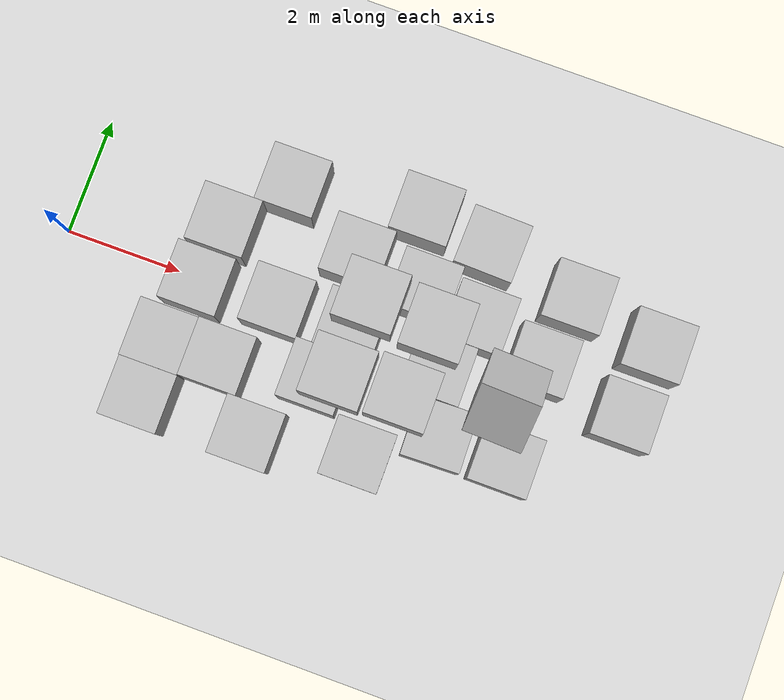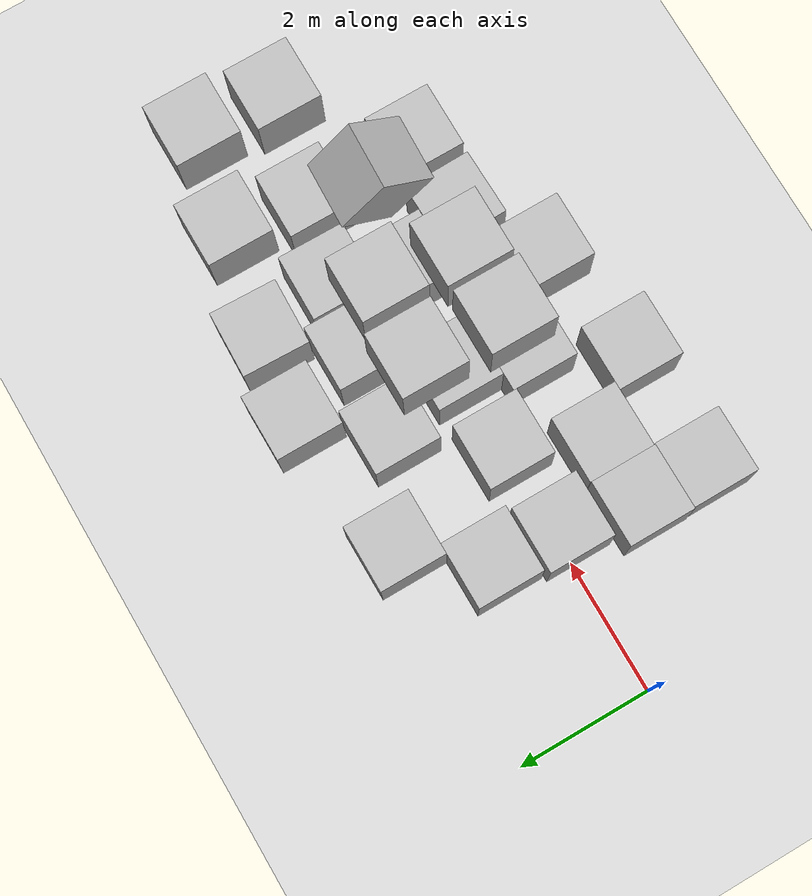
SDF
<sdf version="1.10">
 <world name="default">
  <physics type="ode">
   <max_step_size>0.0040000000000000001</max_step_size>
   <real_time_factor>1</real_time_factor>
   <real_time_update_rate>250</real_time_update_rate>
  </physics>
  <gravity>0 0 -9.8000000000000007</gravity>
  <magnetic_field>6.0000000000000002e-06 2.3e-05 -4.1999999999999998e-05</magnetic_field>
  <atmosphere type="adiabatic"/>
  <scene>
   <grid>false</grid>
   <ambient>0.400000006 0.400000006 0.400000006 1</ambient>
   <background>0.699999988 0.699999988 0.699999988 1</background>
   <shadows>true</shadows>
  </scene>
  <spherical_coordinates>
   <surface_model>EARTH_WGS84</surface_model>
   <world_frame_orientation>ENU</world_frame_orientation>
   <latitude_deg>37.586894000000001</latitude_deg>
   <longitude_deg>126.970778</longitude_deg>
   <elevation>80</elevation>
   <heading_deg>0</heading_deg>
  </spherical_coordinates>
  <model name="ground_plane">
   <static>true</static>
   <link name="link">
    <collision name="collision">
     <geometry><plane><normal>0 0 1</normal><size>1 1</size></plane></geometry>
    </collision>
    <visual name="visual">
     <geometry><plane><normal>0 0 1</normal><size>500 500</size></plane></geometry>
     <material>
      <ambient>0.800000012 0.800000012 0.800000012 1</ambient>
      <diffuse>0.800000012 0.800000012 0.800000012 1</diffuse>
      <specular>0.800000012 0.800000012 0.800000012 1</specular>
     </material>
    </visual>
    <inertial>
     <mass>1</mass>
     <inertia><ixx>1</ixx><ixy>0</ixy><ixz>0</ixz><iyy>1</iyy><iyz>0</iyz><izz>1</izz></inertia>
    </inertial>
   </link>
  </model>
  <model name="box">
   <pose>2.4474948974368065 -0.086109404881023727 0.49999999843196863 9.9660382642069981e-21 1.4924746632754187e-20 -5.8104853870912219e-21</pose>
   <link name="box_link">
    <inertial>
     <inertia><ixx>0.16666</ixx><ixy>0</ixy><ixz>0</ixz><iyy>0.16666</iyy><iyz>0</iyz><izz>0.16666</izz></inertia>
     <mass>1</mass>
    </inertial>
    <collision name="box_collision"><geometry><box><size>1 1 1</size></box></geometry></collision>
    <visual name="box_visual">
     <geometry><box><size>1 1 1</size></box></geometry>
     <material>
      <ambient>0.300000012 0.300000012 0.300000012 1</ambient>
      <diffuse>0.699999988 0.699999988 0.699999988 1</diffuse>
      <specular>1 1 1 1</specular>
     </material>
    </visual>
   </link>
   <static>false</static>
  </model>
  <model name="box_0">
   <pose>2.214190351768083 -1.1770507189998458 0.49999984319472768 -2.6708583225359532e-08 -2.0822869937598657e-07 3.9978852205741396e-05</pose>
   <link name="box_link">
    <inertial>
     <inertia><ixx>0.16666</ixx><ixy>0</ixy><ixz>0</ixz><iyy>0.16666</iyy><iyz>0</iyz><izz>0.16666</izz></inertia>
     <mass>1</mass>
    </inertial>
    <collision name="box_collision"><geometry><box><size>1 1 1</size></box></geometry></collision>
    <visual name="box_visual">
     <geometry><box><size>1 1 1</size></box></geometry>
     <material>
      <ambient>0.300000012 0.300000012 0.300000012 1</ambient>
      <diffuse>0.699999988 0.699999988 0.699999988 1</diffuse>
      <specular>1 1 1 1</specular>
     </material>
    </visual>
   </link>
   <static>false</static>
  </model>
  <model name="box_1">
   <pose>2.5205984043999781 0.959731098084873 0.49999984319526963 8.3204358461866496e-08 -8.4795398704888942e-13 -0.00013745544374388203</pose>
   <link name="box_link">
    <inertial>
     <inertia><ixx>0.16666</ixx><ixy>0</ixy><ixz>0</ixz><iyy>0.16666</iyy><iyz>0</iyz><izz>0.16666</izz></inertia>
     <mass>1</mass>
    </inertial>
    <collision name="box_collision"><geometry><box><size>1 1 1</size></box></geometry></collision>
    <visual name="box_visual">
     <geometry><box><size>1 1 1</size></box></geometry>
     <material>
      <ambient>0.300000012 0.300000012 0.300000012 1</ambient>
      <diffuse>0.699999988 0.699999988 0.699999988 1</diffuse>
      <specular>1 1 1 1</specular>
     </material>
    </visual>
   </link>
   <static>false</static>
  </model>
  <model name="box_2">
   <pose>3.2142140843072791 -1.1619116468821091 0.49999984319412538 -4.0119992067643129e-12 2.0903316913602406e-07 9.4709833687981379e-05</pose>
   <link name="box_link">
    <inertial>
     <inertia><ixx>0.16666</ixx><ixy>0</ixy><ixz>0</ixz><iyy>0.16666</iyy><iyz>0</iyz><izz>0.16666</izz></inertia>
     <mass>1</mass>
    </inertial>
    <collision name="box_collision"><geometry><box><size>1 1 1</size></box></geometry></collision>
    <visual name="box_visual">
     <geometry><box><size>1 1 1</size></box></geometry>
     <material>
      <ambient>0.300000012 0.300000012 0.300000012 1</ambient>
      <diffuse>0.699999988 0.699999988 0.699999988 1</diffuse>
      <specular>1 1 1 1</specular>
     </material>
    </visual>
   </link>
   <static>false</static>
  </model>
  <model name="box_3">
   <pose>3.7988302174143467 0.024017401064098519 0.49999984319138729 -3.4207017180468082e-11 -1.9821262214712495e-07 -1.9497075339046911e-05</pose>
   <link name="box_link">
    <inertial>
     <inertia><ixx>0.16666</ixx><ixy>0</ixy><ixz>0</ixz><iyy>0.16666</iyy><iyz>0</iyz><izz>0.16666</izz></inertia>
     <mass>1</mass>
    </inertial>
    <collision name="box_collision"><geometry><box><size>1 1 1</size></box></geometry></collision>
    <visual name="box_visual">
     <geometry><box><size>1 1 1</size></box></geometry>
     <material>
      <ambient>0.300000012 0.300000012 0.300000012 1</ambient>
      <diffuse>0.699999988 0.699999988 0.699999988 1</diffuse>
      <specular>1 1 1 1</specular>
     </material>
    </visual>
   </link>
   <static>false</static>
  </model>
  <model name="box_4">
   <pose>4.7415651249895419 1.2354847935949884 0.49999999843196863 9.9660382642069981e-21 1.4924746632754187e-20 -5.8104853870912219e-21</pose>
   <link name="box_link">
    <inertial>
     <inertia><ixx>0.16666</ixx><ixy>0</ixy><ixz>0</ixz><iyy>0.16666</iyy><iyz>0</iyz><izz>0.16666</izz></inertia>
     <mass>1</mass>
    </inertial>
    <collision name="box_collision"><geometry><box><size>1 1 1</size></box></geometry></collision>
    <visual name="box_visual">
     <geometry><box><size>1 1 1</size></box></geometry>
     <material>
      <ambient>0.300000012 0.300000012 0.300000012 1</ambient>
      <diffuse>0.699999988 0.699999988 0.699999988 1</diffuse>
      <specular>1 1 1 1</specular>
     </material>
    </visual>
   </link>
   <static>false</static>
  </model>
  <model name="box_5">
   <pose>3.362046630852582 1.9596147300777926 0.49999984319526908 -1.1210914355470137e-07 9.8015541905729489e-13 -0.00013842834948203244</pose>
   <link name="box_link">
    <inertial>
     <inertia><ixx>0.16666</ixx><ixy>0</ixy><ixz>0</ixz><iyy>0.16666</iyy><iyz>0</iyz><izz>0.16666</izz></inertia>
     <mass>1</mass>
    </inertial>
    <collision name="box_collision"><geometry><box><size>1 1 1</size></box></geometry></collision>
    <visual name="box_visual">
     <geometry><box><size>1 1 1</size></box></geometry>
     <material>
      <ambient>0.300000012 0.300000012 0.300000012 1</ambient>
      <diffuse>0.699999988 0.699999988 0.699999988 1</diffuse>
      <specular>1 1 1 1</specular>
     </material>
    </visual>
   </link>
   <static>false</static>
  </model>
  <model name="box_6">
   <pose>4.798734562181922 -0.93037844434093375 0.49999984317595147 3.2680894838689625e-11 -1.4037160619343397e-09 -0.00018664244557544744</pose>
   <link name="box_link">
    <inertial>
     <inertia><ixx>0.16666</ixx><ixy>0</ixy><ixz>0</ixz><iyy>0.16666</iyy><iyz>0</iyz><izz>0.16666</izz></inertia>
     <mass>1</mass>
    </inertial>
    <collision name="box_collision"><geometry><box><size>1 1 1</size></box></geometry></collision>
    <visual name="box_visual">
     <geometry><box><size>1 1 1</size></box></geometry>
     <material>
      <ambient>0.300000012 0.300000012 0.300000012 1</ambient>
      <diffuse>0.699999988 0.699999988 0.699999988 1</diffuse>
      <specular>1 1 1 1</specular>
     </material>
    </visual>
   </link>
   <static>false</static>
  </model>
  <model name="box_7">
   <pose>5.0637068747956064 0.069614254634464953 0.49999898287287881 -1.9073406658216128e-06 -4.1964923662888866e-10 -0.00010121079831848304</pose>
   <link name="box_link">
    <inertial>
     <inertia><ixx>0.16666</ixx><ixy>0</ixy><ixz>0</ixz><iyy>0.16666</iyy><iyz>0</iyz><izz>0.16666</izz></inertia>
     <mass>1</mass>
    </inertial>
    <collision name="box_collision"><geometry><box><size>1 1 1</size></box></geometry></collision>
    <visual name="box_visual">
     <geometry><box><size>1 1 1</size></box></geometry>
     <material>
      <ambient>0.300000012 0.300000012 0.300000012 1</ambient>
      <diffuse>0.699999988 0.699999988 0.699999988 1</diffuse>
      <specular>1 1 1 1</specular>
     </material>
    </visual>
   </link>
   <static>false</static>
  </model>
  <model name="box_8">
   <pose>4.0851918352056691 -2.1618649733345086 0.49999984319579899 1.7361639351226557e-08 5.1511721686104298e-12 2.1566051683350203e-05</pose>
   <link name="box_link">
    <inertial>
     <inertia><ixx>0.16666</ixx><ixy>0</ixy><ixz>0</ixz><iyy>0.16666</iyy><iyz>0</iyz><izz>0.16666</izz></inertia>
     <mass>1</mass>
    </inertial>
    <collision name="box_collision"><geometry><box><size>1 1 1</size></box></geometry></collision>
    <visual name="box_visual">
     <geometry><box><size>1 1 1</size></box></geometry>
     <material>
      <ambient>0.300000012 0.300000012 0.300000012 1</ambient>
      <diffuse>0.699999988 0.699999988 0.699999988 1</diffuse>
      <specular>1 1 1 1</specular>
     </material>
    </visual>
   </link>
   <static>false</static>
  </model>
  <model name="box_9">
   <pose>2.2279116963008114 -2.1770648575297415 0.49999984319210211 1.7298370564930165e-07 -1.4754177707842388e-11 9.1184035323134449e-06</pose>
   <link name="box_link">
    <inertial>
     <inertia><ixx>0.16666</ixx><ixy>0</ixy><ixz>0</ixz><iyy>0.16666</iyy><iyz>0</iyz><izz>0.16666</izz></inertia>
     <mass>1</mass>
    </inertial>
    <collision name="box_collision"><geometry><box><size>1 1 1</size></box></geometry></collision>
    <visual name="box_visual">
     <geometry><box><size>1 1 1</size></box></geometry>
     <material>
      <ambient>0.300000012 0.300000012 0.300000012 1</ambient>
      <diffuse>0.699999988 0.699999988 0.699999988 1</diffuse>
      <specular>1 1 1 1</specular>
     </material>
    </visual>
   </link>
   <static>false</static>
  </model>
  <model name="box_10">
   <pose>6.9958658739832513 -1.1213542067684554 0.49999976291157905 8.9950072759460796e-08 -2.7062348593929546e-08 0.023785521142408925</pose>
   <link name="box_link">
    <inertial>
     <inertia><ixx>0.16666</ixx><ixy>0</ixy><ixz>0</ixz><iyy>0.16666</iyy><iyz>0</iyz><izz>0.16666</izz></inertia>
     <mass>1</mass>
    </inertial>
    <collision name="box_collision"><geometry><box><size>1 1 1</size></box></geometry></collision>
    <visual name="box_visual">
     <geometry><box><size>1 1 1</size></box></geometry>
     <material>
      <ambient>0.300000012 0.300000012 0.300000012 1</ambient>
      <diffuse>0.699999988 0.699999988 0.699999988 1</diffuse>
      <specular>1 1 1 1</specular>
     </material>
    </visual>
   </link>
   <static>false</static>
  </model>
  <model name="box_11">
   <pose>5.8757013421583046 -1.8639911365269111 0.49999999843196863 9.9660382642069981e-21 1.4924746632754187e-20 -5.8104853870912219e-21</pose>
   <link name="box_link">
    <inertial>
     <inertia><ixx>0.16666</ixx><ixy>0</ixy><ixz>0</ixz><iyy>0.16666</iyy><iyz>0</iyz><izz>0.16666</izz></inertia>
     <mass>1</mass>
    </inertial>
    <collision name="box_collision"><geometry><box><size>1 1 1</size></box></geometry></collision>
    <visual name="box_visual">
     <geometry><box><size>1 1 1</size></box></geometry>
     <material>
      <ambient>0.300000012 0.300000012 0.300000012 1</ambient>
      <diffuse>0.699999988 0.699999988 0.699999988 1</diffuse>
      <specular>1 1 1 1</specular>
     </material>
    </visual>
   </link>
   <static>false</static>
  </model>
  <model name="box_12">
   <pose>7.0006631271598634 0.88900449163932072 0.49999984319233504 3.1486567043145041e-09 -2.9861720554494636e-07 -0.010505176156075628</pose>
   <link name="box_link">
    <inertial>
     <inertia><ixx>0.16666</ixx><ixy>0</ixy><ixz>0</ixz><iyy>0.16666</iyy><iyz>0</iyz><izz>0.16666</izz></inertia>
     <mass>1</mass>
    </inertial>
    <collision name="box_collision"><geometry><box><size>1 1 1</size></box></geometry></collision>
    <visual name="box_visual">
     <geometry><box><size>1 1 1</size></box></geometry>
     <material>
      <ambient>0.300000012 0.300000012 0.300000012 1</ambient>
      <diffuse>0.699999988 0.699999988 0.699999988 1</diffuse>
      <specular>1 1 1 1</specular>
     </material>
    </visual>
   </link>
   <static>false</static>
  </model>
  <model name="box_13">
   <pose>6.778945872024126 2.0822434563804566 0.49999973192432984 2.9378503186482544e-08 -6.7615835724268927e-08 -0.029133425141335913</pose>
   <link name="box_link">
    <inertial>
     <inertia><ixx>0.16666</ixx><ixy>0</ixy><ixz>0</ixz><iyy>0.16666</iyy><iyz>0</iyz><izz>0.16666</izz></inertia>
     <mass>1</mass>
    </inertial>
    <collision name="box_collision"><geometry><box><size>1 1 1</size></box></geometry></collision>
    <visual name="box_visual">
     <geometry><box><size>1 1 1</size></box></geometry>
     <material>
      <ambient>0.300000012 0.300000012 0.300000012 1</ambient>
      <diffuse>0.699999988 0.699999988 0.699999988 1</diffuse>
      <specular>1 1 1 1</specular>
     </material>
    </visual>
   </link>
   <static>false</static>
  </model>
  <model name="box_14">
   <pose>5.5753154250104267 2.2633607146503079 0.49999999843196863 9.9660382642069981e-21 1.4924746632754187e-20 -5.8104853870912219e-21</pose>
   <link name="box_link">
    <inertial>
     <inertia><ixx>0.16666</ixx><ixy>0</ixy><ixz>0</ixz><iyy>0.16666</iyy><iyz>0</iyz><izz>0.16666</izz></inertia>
     <mass>1</mass>
    </inertial>
    <collision name="box_collision"><geometry><box><size>1 1 1</size></box></geometry></collision>
    <visual name="box_visual">
     <geometry><box><size>1 1 1</size></box></geometry>
     <material>
      <ambient>0.300000012 0.300000012 0.300000012 1</ambient>
      <diffuse>0.699999988 0.699999988 0.699999988 1</diffuse>
      <specular>1 1 1 1</specular>
     </material>
    </visual>
   </link>
   <static>false</static>
  </model>
  <model name="box_15">
   <pose>6.6316224920080149 -0.11417519923026451 0.49999967243672916 1.2591255410088752e-07 -2.3431192763351006e-07 0.00096249721480883065</pose>
   <link name="box_link">
    <inertial>
     <inertia><ixx>0.16666</ixx><ixy>0</ixy><ixz>0</ixz><iyy>0.16666</iyy><iyz>0</iyz><izz>0.16666</izz></inertia>
     <mass>1</mass>
    </inertial>
    <collision name="box_collision"><geometry><box><size>1 1 1</size></box></geometry></collision>
    <visual name="box_visual">
     <geometry><box><size>1 1 1</size></box></geometry>
     <material>
      <ambient>0.300000012 0.300000012 0.300000012 1</ambient>
      <diffuse>0.699999988 0.699999988 0.699999988 1</diffuse>
      <specular>1 1 1 1</specular>
     </material>
    </visual>
   </link>
   <static>false</static>
  </model>
  <model name="box_16">
   <pose>5.9734297121517299 1.0690721691917693 0.49999901628457921 -6.5009600932497952e-08 1.0229923190347696e-06 -0.0028595488225911371</pose>
   <link name="box_link">
    <inertial>
     <inertia><ixx>0.16666</ixx><ixy>0</ixy><ixz>0</ixz><iyy>0.16666</iyy><iyz>0</iyz><izz>0.16666</izz></inertia>
     <mass>1</mass>
    </inertial>
    <collision name="box_collision"><geometry><box><size>1 1 1</size></box></geometry></collision>
    <visual name="box_visual">
     <geometry><box><size>1 1 1</size></box></geometry>
     <material>
      <ambient>0.300000012 0.300000012 0.300000012 1</ambient>
      <diffuse>0.699999988 0.699999988 0.699999988 1</diffuse>
      <specular>1 1 1 1</specular>
     </material>
    </visual>
   </link>
   <static>false</static>
  </model>
  <model name="box_17">
   <pose>8.1439931891445703 -1.1292231264911672 0.49999979778901738 -2.5089600650572327e-08 4.7061092085070718e-08 -0.0015065171134214374</pose>
   <link name="box_link">
    <inertial>
     <inertia><ixx>0.16666</ixx><ixy>0</ixy><ixz>0</ixz><iyy>0.16666</iyy><iyz>0</iyz><izz>0.16666</izz></inertia>
     <mass>1</mass>
    </inertial>
    <collision name="box_collision"><geometry><box><size>1 1 1</size></box></geometry></collision>
    <visual name="box_visual">
     <geometry><box><size>1 1 1</size></box></geometry>
     <material>
      <ambient>0.300000012 0.300000012 0.300000012 1</ambient>
      <diffuse>0.699999988 0.699999988 0.699999988 1</diffuse>
      <specular>1 1 1 1</specular>
     </material>
    </visual>
   </link>
   <static>false</static>
  </model>
  <model name="box_18">
   <pose>8.1755699243063624 0.58599870722062175 0.49999976504125121 -4.6629112815056391e-08 -1.7818093013838831e-07 -0.00035491244382498174</pose>
   <link name="box_link">
    <inertial>
     <inertia><ixx>0.16666</ixx><ixy>0</ixy><ixz>0</ixz><iyy>0.16666</iyy><iyz>0</iyz><izz>0.16666</izz></inertia>
     <mass>1</mass>
    </inertial>
    <collision name="box_collision"><geometry><box><size>1 1 1</size></box></geometry></collision>
    <visual name="box_visual">
     <geometry><box><size>1 1 1</size></box></geometry>
     <material>
      <ambient>0.300000012 0.300000012 0.300000012 1</ambient>
      <diffuse>0.699999988 0.699999988 0.699999988 1</diffuse>
      <specular>1 1 1 1</specular>
     </material>
    </visual>
   </link>
   <static>false</static>
  </model>
  <model name="box_19">
   <pose>6.2421083135964697 -0.75723264820447644 1.4999992239606306 1.0858093579896803e-06 -3.105333453399137e-06 -0.00083895854922587767</pose>
   <link name="box_link">
    <inertial>
     <inertia><ixx>0.16666</ixx><ixy>0</ixy><ixz>0</ixz><iyy>0.16666</iyy><iyz>0</iyz><izz>0.16666</izz></inertia>
     <mass>1</mass>
    </inertial>
    <collision name="box_collision"><geometry><box><size>1 1 1</size></box></geometry></collision>
    <visual name="box_visual">
     <geometry><box><size>1 1 1</size></box></geometry>
     <material>
      <ambient>0.300000012 0.300000012 0.300000012 1</ambient>
      <diffuse>0.699999988 0.699999988 0.699999988 1</diffuse>
      <specular>1 1 1 1</specular>
     </material>
    </visual>
   </link>
   <static>false</static>
  </model>
  <model name="box_20">
   <pose>9.8504278803099794 1.4398370434878007 0.49999999843196863 9.9660382642069981e-21 1.4924746632754187e-20 -5.8104853870912219e-21</pose>
   <link name="box_link">
    <inertial>
     <inertia><ixx>0.16666</ixx><ixy>0</ixy><ixz>0</ixz><iyy>0.16666</iyy><iyz>0</iyz><izz>0.16666</izz></inertia>
     <mass>1</mass>
    </inertial>
    <collision name="box_collision"><geometry><box><size>1 1 1</size></box></geometry></collision>
    <visual name="box_visual">
     <geometry><box><size>1 1 1</size></box></geometry>
     <material>
      <ambient>0.300000012 0.300000012 0.300000012 1</ambient>
      <diffuse>0.699999988 0.699999988 0.699999988 1</diffuse>
      <specular>1 1 1 1</specular>
     </material>
    </visual>
   </link>
   <static>false</static>
  </model>
  <model name="box_21">
   <pose>8.3855040618623651 1.7498879885637564 0.49999999843196863 9.9660382642069981e-21 1.4924746632754187e-20 -5.8104853870912219e-21</pose>
   <link name="box_link">
    <inertial>
     <inertia><ixx>0.16666</ixx><ixy>0</ixy><ixz>0</ixz><iyy>0.16666</iyy><iyz>0</iyz><izz>0.16666</izz></inertia>
     <mass>1</mass>
    </inertial>
    <collision name="box_collision"><geometry><box><size>1 1 1</size></box></geometry></collision>
    <visual name="box_visual">
     <geometry><box><size>1 1 1</size></box></geometry>
     <material>
      <ambient>0.300000012 0.300000012 0.300000012 1</ambient>
      <diffuse>0.699999988 0.699999988 0.699999988 1</diffuse>
      <specular>1 1 1 1</specular>
     </material>
    </visual>
   </link>
   <static>false</static>
  </model>
  <model name="box_22">
   <pose>9.7447740240702103 0.21791104478652734 0.49999999843196863 9.9660382642069981e-21 1.4924746632754187e-20 -5.8104853870912219e-21</pose>
   <link name="box_link">
    <inertial>
     <inertia><ixx>0.16666</ixx><ixy>0</ixy><ixz>0</ixz><iyy>0.16666</iyy><iyz>0</iyz><izz>0.16666</izz></inertia>
     <mass>1</mass>
    </inertial>
    <collision name="box_collision"><geometry><box><size>1 1 1</size></box></geometry></collision>
    <visual name="box_visual">
     <geometry><box><size>1 1 1</size></box></geometry>
     <material>
      <ambient>0.300000012 0.300000012 0.300000012 1</ambient>
      <diffuse>0.699999988 0.699999988 0.699999988 1</diffuse>
      <specular>1 1 1 1</specular>
     </material>
    </visual>
   </link>
   <static>false</static>
  </model>
  <model name="box_23">
   <pose>5.2482918346977776 0.50265650392906025 1.4999995682989591 7.8527151690965913e-08 4.8515050944970884e-08 -1.1531061343265281e-07</pose>
   <link name="box_link">
    <inertial>
     <inertia><ixx>0.16666</ixx><ixy>0</ixy><ixz>0</ixz><iyy>0.16666</iyy><iyz>0</iyz><izz>0.16666</izz></inertia>
     <mass>1</mass>
    </inertial>
    <collision name="box_collision"><geometry><box><size>1 1 1</size></box></geometry></collision>
    <visual name="box_visual">
     <geometry><box><size>1 1 1</size></box></geometry>
     <material>
      <ambient>0.300000012 0.300000012 0.300000012 1</ambient>
      <diffuse>0.699999988 0.699999988 0.699999988 1</diffuse>
      <specular>1 1 1 1</specular>
     </material>
    </visual>
   </link>
   <static>false</static>
  </model>
  <model name="box_24">
   <pose>5.169817209266717 -0.78902882538070873 1.4999994859155596 1.8075045220409386e-07 1.5986907456074761e-07 2.5004012621396366e-07</pose>
   <link name="box_link">
    <inertial>
     <inertia><ixx>0.16666</ixx><ixy>0</ixy><ixz>0</ixz><iyy>0.16666</iyy><iyz>0</iyz><izz>0.16666</izz></inertia>
     <mass>1</mass>
    </inertial>
    <collision name="box_collision"><geometry><box><size>1 1 1</size></box></geometry></collision>
    <visual name="box_visual">
     <geometry><box><size>1 1 1</size></box></geometry>
     <material>
      <ambient>0.300000012 0.300000012 0.300000012 1</ambient>
      <diffuse>0.699999988 0.699999988 0.699999988 1</diffuse>
      <specular>1 1 1 1</specular>
     </material>
    </visual>
   </link>
   <static>false</static>
  </model>
  <model name="box_25">
   <pose>6.3861598908184973 0.43814845318354062 1.4999988867423195 1.0948701645651648e-07 -1.2415263851887912e-07 4.7115147155746581e-08</pose>
   <link name="box_link">
    <inertial>
     <inertia><ixx>0.16666</ixx><ixy>0</ixy><ixz>0</ixz><iyy>0.16666</iyy><iyz>0</iyz><izz>0.16666</izz></inertia>
     <mass>1</mass>
    </inertial>
    <collision name="box_collision"><geometry><box><size>1 1 1</size></box></geometry></collision>
    <visual name="box_visual">
     <geometry><box><size>1 1 1</size></box></geometry>
     <material>
      <ambient>0.300000012 0.300000012 0.300000012 1</ambient>
      <diffuse>0.699999988 0.699999988 0.699999988 1</diffuse>
      <specular>1 1 1 1</specular>
     </material>
    </visual>
   </link>
   <static>false</static>
  </model>
  <model name="box_26">
   <pose>7.8188026145990586 -0.26856909478197016 1.3599351573697613 0.72776313582429053 -0.011354872745063581 -0.034135058443193894</pose>
   <link name="box_link">
    <inertial>
     <inertia><ixx>0.16666</ixx><ixy>0</ixy><ixz>0</ixz><iyy>0.16666</iyy><iyz>0</iyz><izz>0.16666</izz></inertia>
     <mass>1</mass>
    </inertial>
    <collision name="box_collision"><geometry><box><size>1 1 1</size></box></geometry></collision>
    <visual name="box_visual">
     <geometry><box><size>1 1 1</size></box></geometry>
     <material>
      <ambient>0.300000012 0.300000012 0.300000012 1</ambient>
      <diffuse>0.699999988 0.699999988 0.699999988 1</diffuse>
      <specular>1 1 1 1</specular>
     </material>
    </visual>
   </link>
   <static>false</static>
  </model>
  <light name="sunUTC" type="directional">
   <pose>0 0 500 0 0 0</pose>
   <intensity>1</intensity>
   <direction>0.001 0.625 -0.78000000000000003</direction>
   <diffuse>0.903999984 0.903999984 0.903999984 1</diffuse>
   <specular>0.270999998 0.270999998 0.270999998 1</specular>
   <attenuation><range>2000</range><linear>0</linear><constant>1</constant><quadratic>0</quadratic></attenuation>
   <spot><inner_angle>0</inner_angle><outer_angle>0</outer_angle><falloff>0</falloff></spot>
  </light>
 </world>
</sdf>
